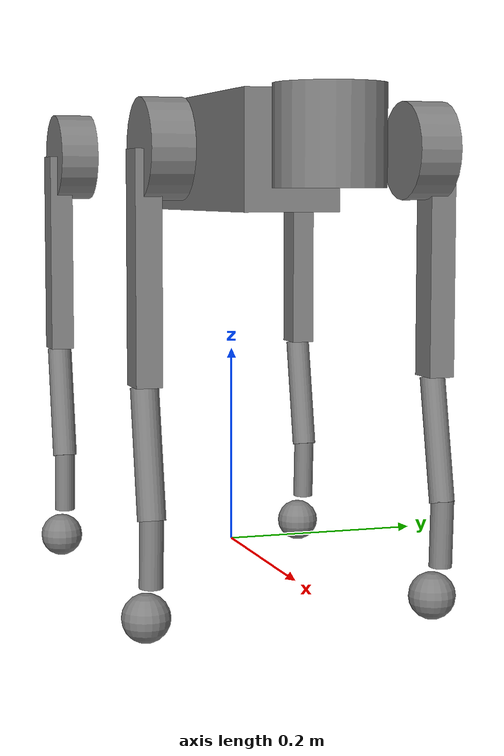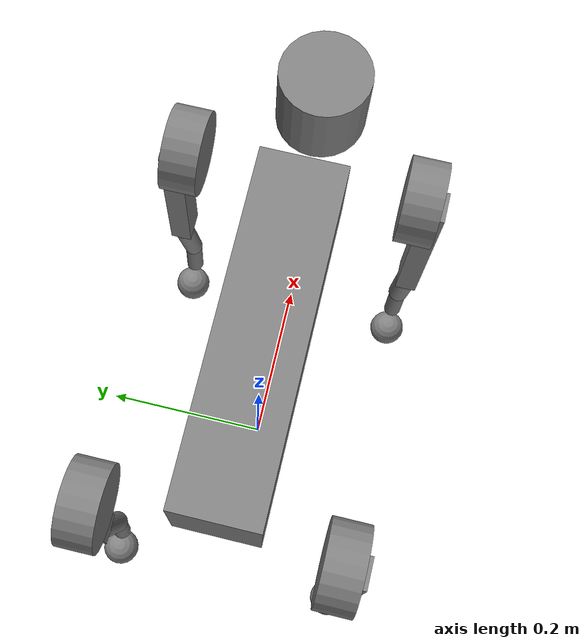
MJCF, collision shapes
<mujoco model="go2">
  <compiler angle="radian" meshdir="assets" autolimits="true"/>

  <default>
    <default class="go2">
      <default class="visual">
        <geom type="mesh" contype="0" conaffinity="0" group="2"/>
      </default>
      <default class="collision">
        <geom group="3" contype="1" conaffinity="1"/>
        <default class="foot">
          <geom type="sphere" size="0.023" pos="0 0 -0.213" priority="1" condim="6"
            friction="0.6 0.02 0.01"/>
        </default>
      </default>
    </default>
  </default>

  <asset>
    <material name="metal" rgba=".9 .95 .95 1"/>
    <material name="black" rgba="0 0 0 1"/>
    <material name="white" rgba="1 1 1 1"/>
    <material name="gray" rgba="0.671705 0.692426 0.774270 1"/>

    <mesh file="base_0.obj"/>
    <mesh file="base_1.obj"/>
    <mesh file="base_2.obj"/>
    <mesh file="base_3.obj"/>
    <mesh file="base_4.obj"/>
    <mesh file="hip_0.obj"/>
    <mesh file="hip_1.obj"/>
    <mesh file="thigh_0.obj"/>
    <mesh file="thigh_1.obj"/>
    <mesh file="thigh_mirror_0.obj"/>
    <mesh file="thigh_mirror_1.obj"/>
    <mesh file="calf_0.obj"/>
    <mesh file="calf_1.obj"/>
    <mesh file="calf_mirror_0.obj"/>
    <mesh file="calf_mirror_1.obj"/>
    <mesh file="foot.obj"/>
  </asset>

  <worldbody>
    <body name="trunk" pos="0 0 0.4" childclass="go2">
      <light pos="0 0 2" mode="trackcom"/>
      <camera name="tracking" pos="0.846 -1.3 0.316" xyaxes="0.866 0.500 0.000 -0.171 0.296 0.940" mode="trackcom"/>
      <site name="head" pos="0.3 0 0" rgba="1 0 0 1" size="0.02" group="5"/>
      <inertial pos="0.021112 0 -0.005366" quat="-0.000543471 0.713435 -0.00173769 0.700719"
        mass="6.921"
        diaginertia="0.107027 0.0980771 0.0244531"/>
      <freejoint name="floating_base_joint"/>
      <geom mesh="base_0" material="black" class="visual"/>
      <geom mesh="base_1" material="black" class="visual"/>
      <geom mesh="base_2" material="black" class="visual"/>
      <geom mesh="base_3" material="white" class="visual"/>
      <geom mesh="base_4" material="gray" class="visual"/>
      <geom name="trunk_collision" class="collision" type="box" size="0.1881 0.04675 0.057"/>
      <geom name="head_collision" class="collision" type="cylinder" size="0.05 0.045" pos="0.285 0 0.01"/>
      <site name="imu" pos="-0.02557 0 0.04232" group="5"/>
      <!-- FR leg -->
      <body name="FR_hip" pos="0.1934 -0.0465 0">
        <inertial pos="-0.0054 -0.00194 -0.000105" quat="0.498237 0.505462 0.499245 0.497014"
          mass="0.678"
          diaginertia="0.00088403 0.000596003 0.000479967"/>
        <joint name="FR_hip_joint" axis="1 0 0" range="-1.0472 1.0472"/>
        <geom mesh="hip_0" material="metal" class="visual" quat="4.63268e-05 1 0 0"/>
        <geom mesh="hip_1" material="gray" class="visual" quat="4.63268e-05 1 0 0"/>
        <geom name="FR_hip_collision" class="collision" type="cylinder" size="0.046 0.02" pos="0 -0.08 0" quat="0.707107 0.707107 0 0"/>
        <body name="FR_thigh" pos="0 -0.0955 0">
          <inertial pos="-0.00374 0.0223 -0.0327" quat="0.551623 -0.0200632 0.0847635 0.829533"
            mass="1.152"
            diaginertia="0.00594973 0.00584149 0.000878787"/>
          <joint name="FR_thigh_joint" axis="0 1 0" range="-1.5708 3.4907"/>
          <geom mesh="thigh_mirror_0" material="metal" class="visual"/>
          <geom mesh="thigh_mirror_1" material="gray" class="visual"/>
          <geom name="FR_thigh_collision" class="collision" type="box" size="0.1065 0.01225 0.017" pos="0 0 -0.1065" quat="0.707107 0 0.707107 0"/>
          <body name="FR_calf" pos="0 0 -0.213">
            <inertial pos="0.00629595 0.000622121 -0.141417"
              quat="0.703508 -0.00450087 0.00154099 0.710672"
              mass="0.241352" diaginertia="0.0014901 0.00146356 5.31397e-05"/>
            <joint name="FR_calf_joint" axis="0 1 0" range="-2.7227 -0.83776"/>
            <geom mesh="calf_mirror_0" material="gray" class="visual"/>
            <geom mesh="calf_mirror_1" material="black" class="visual"/>
            <geom name="FR_calf_collision1" class="collision" type="cylinder" size="0.013 0.06" pos="0.01 0 -0.06" quat="0.995004 0 -0.0998334 0"/>
            <geom name="FR_calf_collision2" class="collision" type="cylinder" size="0.011 0.0325" pos="0.02 0 -0.148" quat="0.999688 0 0.0249974 0"/>
            <geom pos="0 0 -0.213" mesh="foot" class="visual" material="black"/>
            <geom name="FR_foot_collision" class="foot"/>
            <site name="FR" pos="0 0 -0.213" type="sphere" size="0.023" group="5"/>
          </body>
        </body>
      </body>
      <!-- FL leg -->
      <body name="FL_hip" pos="0.1934 0.0465 0">
        <inertial pos="-0.0054 0.00194 -0.000105" quat="0.497014 0.499245 0.505462 0.498237"
          mass="0.678"
          diaginertia="0.00088403 0.000596003 0.000479967"/>
        <joint name="FL_hip_joint" axis="1 0 0" range="-1.0472 1.0472"/>
        <geom mesh="hip_0" material="metal" class="visual"/>
        <geom mesh="hip_1" material="gray" class="visual"/>
        <geom name="FL_hip_collision" class="collision" type="cylinder" size="0.046 0.02" pos="0 0.08 0" quat="1 1 0 0"/>
        <body name="FL_thigh" pos="0 0.0955 0">
          <inertial pos="-0.00374 -0.0223 -0.0327" quat="0.829533 0.0847635 -0.0200632 0.551623"
            mass="1.152"
            diaginertia="0.00594973 0.00584149 0.000878787"/>
          <joint name="FL_thigh_joint" axis="0 1 0" range="-1.5708 3.4907"/>
          <geom mesh="thigh_0" material="metal" class="visual"/>
          <geom mesh="thigh_1" material="gray" class="visual"/>
          <geom name="FL_thigh_collision" class="collision" type="box" size="0.1065 0.01225 0.017" pos="0 0 -0.1065" quat="0.707107 0 0.707107 0"/>
          <body name="FL_calf" pos="0 0 -0.213">
            <inertial pos="0.00629595 -0.000622121 -0.141417"
              quat="0.710672 0.00154099 -0.00450087 0.703508"
              mass="0.241352" diaginertia="0.0014901 0.00146356 5.31397e-05"/>
            <joint name="FL_calf_joint" axis="0 1 0" range="-2.7227 -0.83776"/>
            <geom mesh="calf_0" material="gray" class="visual"/>
            <geom mesh="calf_1" material="black" class="visual"/>
            <geom name="FL_calf_collision1" class="collision" type="cylinder" size="0.012 0.06" pos="0.008 0 -0.06" quat="0.994493 0 -0.104807 0"/>
            <geom name="FL_calf_collision2" class="collision" type="cylinder" size="0.011 0.0325" pos="0.02 0 -0.148" quat="0.999688 0 0.0249974 0"/>
            <geom pos="0 0 -0.213" mesh="foot" class="visual" material="black"/>
            <geom name="FL_foot_collision" class="foot"/>
            <site name="FL" pos="0 0 -0.213" type="sphere" size="0.023" group="5"/>
          </body>
        </body>
      </body>
      <!-- RL leg -->
      <body name="RL_hip" pos="-0.1934 0.0465 0">
        <inertial pos="0.0054 0.00194 -0.000105" quat="0.505462 0.498237 0.497014 0.499245"
          mass="0.678"
          diaginertia="0.00088403 0.000596003 0.000479967"/>
        <joint name="RL_hip_joint" axis="1 0 0" range="-1.0472 1.0472"/>
        <geom mesh="hip_0" material="metal" class="visual" quat="4.63268e-05 0 1 0"/>
        <geom mesh="hip_1" material="gray" class="visual" quat="4.63268e-05 0 1 0"/>
        <geom name="RL_hip_collision" class="collision" type="cylinder" size="0.046 0.02" pos="0 0.08 0" quat="0.707107 0.707107 0 0"/>
        <body name="RL_thigh" pos="0 0.0955 0">
          <inertial pos="-0.00374 -0.0223 -0.0327" quat="0.829533 0.0847635 -0.0200632 0.551623"
            mass="1.152"
            diaginertia="0.00594973 0.00584149 0.000878787"/>
          <joint name="RL_thigh_joint" axis="0 1 0" range="-0.5236 4.5379"/>
          <geom mesh="thigh_0" material="metal" class="visual"/>
          <geom mesh="thigh_1" material="gray" class="visual"/>
          <geom name="RL_thigh_collision" class="collision" type="box" size="0.1065 0.01225 0.017" pos="0 0 -0.1065" quat="0.707107 0 0.707107 0"/>
          <body name="RL_calf" pos="0 0 -0.213">
            <inertial pos="0.00629595 -0.000622121 -0.141417"
              quat="0.710672 0.00154099 -0.00450087 0.703508"
              mass="0.241352" diaginertia="0.0014901 0.00146356 5.31397e-05"/>
            <joint name="RL_calf_joint" axis="0 1 0" range="-2.7227 -0.83776"/>
            <geom mesh="calf_0" material="gray" class="visual"/>
            <geom mesh="calf_1" material="black" class="visual"/>
            <geom name="RL_calf_collision1" class="collision" type="cylinder" size="0.013 0.06" pos="0.01 0 -0.06" quat="0.995004 0 -0.0998334 0"/>
            <geom name="RL_calf_collision2" class="collision" type="cylinder" size="0.011 0.0325" pos="0.02 0 -0.148" quat="0.999688 0 0.0249974 0"/>
            <geom pos="0 0 -0.213" mesh="foot" class="visual" material="black"/>
            <geom name="RL_foot_collision" class="foot"/>
            <site name="RL" pos="0 0 -0.213" type="sphere" size="0.023" group="5"/>
          </body>
        </body>
      </body>
      <!-- RR leg -->
      <body name="RR_hip" pos="-0.1934 -0.0465 0">
        <inertial pos="0.0054 -0.00194 -0.000105" quat="0.499245 0.497014 0.498237 0.505462"
          mass="0.678"
          diaginertia="0.00088403 0.000596003 0.000479967"/>
        <joint name="RR_hip_joint" axis="1 0 0" range="-1.0472 1.0472"/>
        <geom mesh="hip_0" material="metal" class="visual"
          quat="2.14617e-09 4.63268e-05 4.63268e-05 -1"/>
        <geom mesh="hip_1" material="gray" class="visual"
          quat="2.14617e-09 4.63268e-05 4.63268e-05 -1"/>
        <geom name="RR_hip_collision" class="collision" type="cylinder" size="0.046 0.02" pos="0 -0.08 0" quat="0.707107 0.707107 0 0"/>
        <body name="RR_thigh" pos="0 -0.0955 0">
          <inertial pos="-0.00374 0.0223 -0.0327" quat="0.551623 -0.0200632 0.0847635 0.829533"
            mass="1.152"
            diaginertia="0.00594973 0.00584149 0.000878787"/>
          <joint name="RR_thigh_joint" axis="0 1 0" range="-0.5236 4.5379"/>
          <geom mesh="thigh_mirror_0" material="metal" class="visual"/>
          <geom mesh="thigh_mirror_1" material="gray" class="visual"/>
          <geom name="RR_thigh_collision" class="collision" type="box" size="0.1065 0.01225 0.017" pos="0 0 -0.1065" quat="0.707107 0 0.707107 0"/>
          <body name="RR_calf" pos="0 0 -0.213">
            <inertial pos="0.00629595 0.000622121 -0.141417"
              quat="0.703508 -0.00450087 0.00154099 0.710672"
              mass="0.241352" diaginertia="0.0014901 0.00146356 5.31397e-05"/>
            <joint name="RR_calf_joint" axis="0 1 0" range="-2.7227 -0.83776"/>
            <geom mesh="calf_mirror_0" material="gray" class="visual"/>
            <geom mesh="calf_mirror_1" material="black" class="visual"/>
            <geom name="RR_calf_collision1" class="collision" type="cylinder" size="0.013 0.06" pos="0.01 0 -0.06" quat="0.995004 0 -0.0998334 0"/>
            <geom name="RR_calf_collision2" class="collision" type="cylinder" size="0.011 0.0325" pos="0.02 0 -0.148" quat="0.999688 0 0.0249974 0"/>
            <geom pos="0 0 -0.213" mesh="foot" class="visual" material="black"/>
            <geom name="RR_foot_collision" class="foot"/>
            <site name="RR" pos="0 0 -0.213" type="sphere" size="0.023" group="5"/>
          </body>
        </body>
      </body>
    </body>
  </worldbody>

  <sensor>
    <gyro name="imu_ang_vel" site="imu"/>
    <velocimeter name="imu_lin_vel" site="imu"/>
    <accelerometer name="imu_lin_acc" site="imu"/>
    <subtreeangmom name="root_angmom" body="trunk"/>
  </sensor>

  <keyframe>
    <key name="home" qpos="0 0 0.27 1 0 0 0 0 0.9 -1.8 0 0.9 -1.8 0 0.9 -1.8 0 0.9 -1.8"
      />
  </keyframe>
</mujoco>
